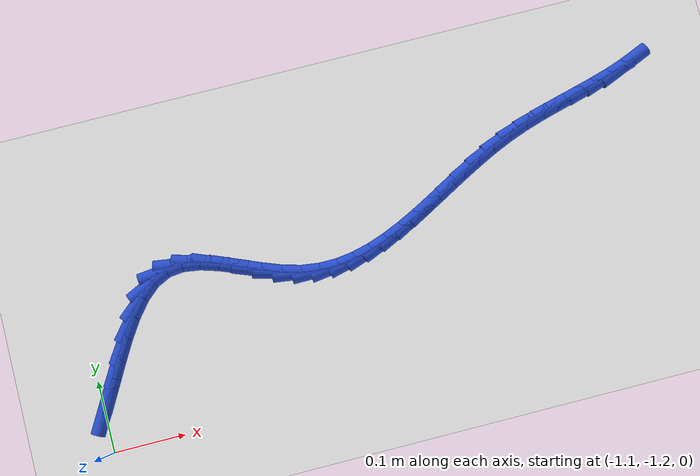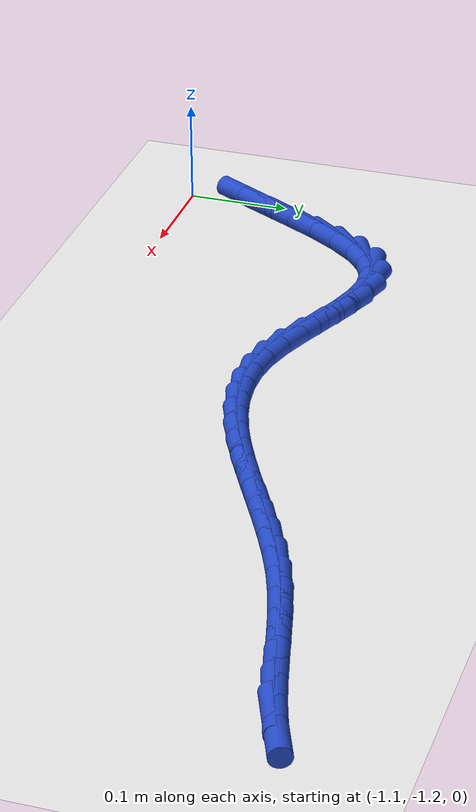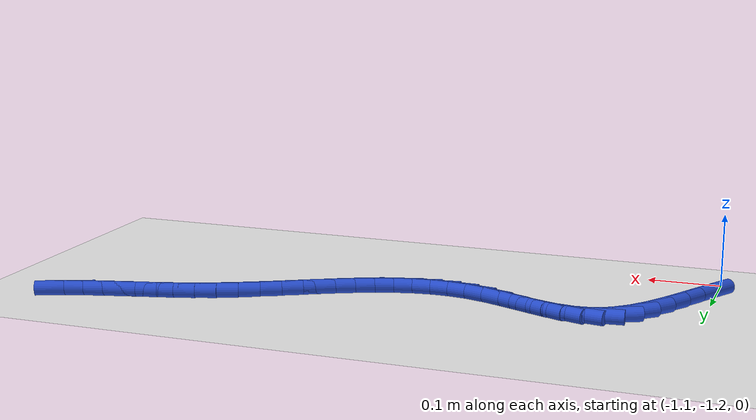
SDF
<sdf version="1.6">
 <world name="default">
  <model name="ground_plane">
   <static>1</static>
   <link name="link">
    <collision name="collision">
     <geometry><plane><normal>0 0 1</normal><size>100 100</size></plane></geometry>
     <surface><friction><ode><mu>100</mu><mu2>50</mu2></ode></friction></surface>
    </collision>
    <visual name="visual">
     <cast_shadows>0</cast_shadows>
     <geometry><plane><normal>0 0 1</normal><size>100 100</size></plane></geometry>
     <material>
      <script><uri>file://media/materials/scripts/gazebo.material</uri><name>Gazebo/WhiteGlow</name></script>
     </material>
    </visual>
   </link>
  </model>
  <model name="line">
   <link name="link_211">
    <pose>-1.0942910765353975 -1.1356147380315111 0.01 0 1.57 1.0641593272589378</pose>
    <collision name="collision">
     <geometry><cylinder><radius>0.01</radius><length>0.08</length></cylinder></geometry>
    </collision>
    <visual name="visual">
     <material>
      <script><name>Gazebo/Blue</name><uri>file://media/materials/scripts/gazebo.material</uri></script>
     </material>
     <geometry><cylinder><radius>0.01</radius><length>0.08</length></cylinder></geometry>
    </visual>
   </link>
   <link name="link_212">
    <pose>-1.0790211817739714 -1.1080990227830474 0.01 0 1.57 1.0752649122389126</pose>
    <collision name="collision">
     <geometry><cylinder><radius>0.01</radius><length>0.08</length></cylinder></geometry>
    </collision>
    <visual name="visual">
     <material>
      <script><name>Gazebo/Blue</name><uri>file://media/materials/scripts/gazebo.material</uri></script>
     </material>
     <geometry><cylinder><radius>0.01</radius><length>0.08</length></cylinder></geometry>
    </visual>
   </link>
   <link name="link_213">
    <pose>-1.0635011787217925 -1.079385626567906 0.01 0 1.57 1.054061123412886</pose>
    <collision name="collision">
     <geometry><cylinder><radius>0.01</radius><length>0.08</length></cylinder></geometry>
    </collision>
    <visual name="visual">
     <material>
      <script><name>Gazebo/Blue</name><uri>file://media/materials/scripts/gazebo.material</uri></script>
     </material>
     <geometry><cylinder><radius>0.01</radius><length>0.08</length></cylinder></geometry>
    </visual>
   </link>
   <link name="link_214">
    <pose>-1.0474318591004173 -1.0511062619289704 0.01 0 1.57 0.9976731279379</pose>
    <collision name="collision">
     <geometry><cylinder><radius>0.01</radius><length>0.08</length></cylinder></geometry>
    </collision>
    <visual name="visual">
     <material>
      <script><name>Gazebo/Blue</name><uri>file://media/materials/scripts/gazebo.material</uri></script>
     </material>
     <geometry><cylinder><radius>0.01</radius><length>0.08</length></cylinder></geometry>
    </visual>
   </link>
   <link name="link_215">
    <pose>-1.0305140146314022 -1.0248926414091233 0.01 0 1.57 0.8946312993672165</pose>
    <collision name="collision">
     <geometry><cylinder><radius>0.01</radius><length>0.08</length></cylinder></geometry>
    </collision>
    <visual name="visual">
     <material>
      <script><name>Gazebo/Blue</name><uri>file://media/materials/scripts/gazebo.material</uri></script>
     </material>
     <geometry><cylinder><radius>0.01</radius><length>0.08</length></cylinder></geometry>
    </visual>
   </link>
   <link name="link_216">
    <pose>-1.0124484370363034 -1.0023764775512483 0.01 0 1.57 0.7221161465296195</pose>
    <collision name="collision">
     <geometry><cylinder><radius>0.01</radius><length>0.08</length></cylinder></geometry>
    </collision>
    <visual name="visual">
     <material>
      <script><name>Gazebo/Blue</name><uri>file://media/materials/scripts/gazebo.material</uri></script>
     </material>
     <geometry><cylinder><radius>0.01</radius><length>0.08</length></cylinder></geometry>
    </visual>
   </link>
   <link name="link_217">
    <pose>-0.9929359180366771 -0.9851894828982285 0.01 0 1.57 0.4485207914425072</pose>
    <collision name="collision">
     <geometry><cylinder><radius>0.01</radius><length>0.08</length></cylinder></geometry>
    </collision>
    <visual name="visual">
     <material>
      <script><name>Gazebo/Blue</name><uri>file://media/materials/scripts/gazebo.material</uri></script>
     </material>
     <geometry><cylinder><radius>0.01</radius><length>0.08</length></cylinder></geometry>
    </visual>
   </link>
   <link name="link_218">
    <pose>-0.9716780176119354 -0.9749595010330955 0.01 0 1.57 0.11161782767706621</pose>
    <collision name="collision">
     <geometry><cylinder><radius>0.01</radius><length>0.08</length></cylinder></geometry>
    </collision>
    <visual name="visual">
     <material>
      <script><name>Gazebo/Blue</name><uri>file://media/materials/scripts/gazebo.material</uri></script>
     </material>
     <geometry><cylinder><radius>0.01</radius><length>0.08</length></cylinder></geometry>
    </visual>
   </link>
   <link name="link_219">
    <pose>-0.9485640576502664 -0.972368803316734 0.01 0 1.57 -0.14327795573760146</pose>
    <collision name="collision">
     <geometry><cylinder><radius>0.01</radius><length>0.08</length></cylinder></geometry>
    </collision>
    <visual name="visual">
     <material>
      <script><name>Gazebo/Blue</name><uri>file://media/materials/scripts/gazebo.material</uri></script>
     </material>
     <geometry><cylinder><radius>0.01</radius><length>0.08</length></cylinder></geometry>
    </visual>
   </link>
   <link name="link_220">
    <pose>-0.9239152203905436 -0.9759248049098899 0.01 0 1.57 -0.29730832622681647</pose>
    <collision name="collision">
     <geometry><cylinder><radius>0.01</radius><length>0.08</length></cylinder></geometry>
    </collision>
    <visual name="visual">
     <material>
      <script><name>Gazebo/Blue</name><uri>file://media/materials/scripts/gazebo.material</uri></script>
     </material>
     <geometry><cylinder><radius>0.01</radius><length>0.08</length></cylinder></geometry>
    </visual>
   </link>
   <link name="link_221">
    <pose>-0.8981131809450493 -0.983830277815893 0.01 0 1.57 -0.37492356543836775</pose>
    <collision name="collision">
     <geometry><cylinder><radius>0.01</radius><length>0.08</length></cylinder></geometry>
    </collision>
    <visual name="visual">
     <material>
      <script><name>Gazebo/Blue</name><uri>file://media/materials/scripts/gazebo.material</uri></script>
     </material>
     <geometry><cylinder><radius>0.01</radius><length>0.08</length></cylinder></geometry>
    </visual>
   </link>
   <link name="link_222">
    <pose>-0.8715396144260655 -0.9942879940380733 0.01 0 1.57 -0.3940948692389621</pose>
    <collision name="collision">
     <geometry><cylinder><radius>0.01</radius><length>0.08</length></cylinder></geometry>
    </collision>
    <visual name="visual">
     <material>
      <script><name>Gazebo/Blue</name><uri>file://media/materials/scripts/gazebo.material</uri></script>
     </material>
     <geometry><cylinder><radius>0.01</radius><length>0.08</length></cylinder></geometry>
    </visual>
   </link>
   <link name="link_223">
    <pose>-0.8445761959458739 -1.0055007255797597 0.01 0 1.57 -0.36059524615743016</pose>
    <collision name="collision">
     <geometry><cylinder><radius>0.01</radius><length>0.08</length></cylinder></geometry>
    </collision>
    <visual name="visual">
     <material>
      <script><name>Gazebo/Blue</name><uri>file://media/materials/scripts/gazebo.material</uri></script>
     </material>
     <geometry><cylinder><radius>0.01</radius><length>0.08</length></cylinder></geometry>
    </visual>
   </link>
   <link name="link_224">
    <pose>-0.8176046006167569 -1.0156712444442821 0.01 0 1.57 -0.26915476148347867</pose>
    <collision name="collision">
     <geometry><cylinder><radius>0.01</radius><length>0.08</length></cylinder></geometry>
    </collision>
    <visual name="visual">
     <material>
      <script><name>Gazebo/Blue</name><uri>file://media/materials/scripts/gazebo.material</uri></script>
     </material>
     <geometry><cylinder><radius>0.01</radius><length>0.08</length></cylinder></geometry>
    </visual>
   </link>
   <link name="link_225">
    <pose>-0.7910051343997562 -1.0230086638128104 0.01 0 1.57 -0.13105173998227246</pose>
    <collision name="collision">
     <geometry><cylinder><radius>0.01</radius><length>0.08</length></cylinder></geometry>
    </collision>
    <visual name="visual">
     <material>
      <script><name>Gazebo/Blue</name><uri>file://media/materials/scripts/gazebo.material</uri></script>
     </material>
     <geometry><cylinder><radius>0.01</radius><length>0.08</length></cylinder></geometry>
    </visual>
   </link>
   <link name="link_226">
    <pose>-0.7650040046304123 -1.0264357994588158 0.01 0 1.57 0.00793620378805641</pose>
    <collision name="collision">
     <geometry><cylinder><radius>0.01</radius><length>0.08</length></cylinder></geometry>
    </collision>
    <visual name="visual">
     <material>
      <script><name>Gazebo/Blue</name><uri>file://media/materials/scripts/gazebo.material</uri></script>
     </material>
     <geometry><cylinder><radius>0.01</radius><length>0.08</length></cylinder></geometry>
    </visual>
   </link>
   <link name="link_227">
    <pose>-0.7395341650327588 -1.0262336613775254 0.01 0 1.57 0.13489426089278808</pose>
    <collision name="collision">
     <geometry><cylinder><radius>0.01</radius><length>0.08</length></cylinder></geometry>
    </collision>
    <visual name="visual">
     <material>
      <script><name>Gazebo/Blue</name><uri>file://media/materials/scripts/gazebo.material</uri></script>
     </material>
     <geometry><cylinder><radius>0.01</radius><length>0.08</length></cylinder></geometry>
    </visual>
   </link>
   <link name="link_228">
    <pose>-0.7144957027890019 -1.022835479845328 0.01 0 1.57 0.24437842041667415</pose>
    <collision name="collision">
     <geometry><cylinder><radius>0.01</radius><length>0.08</length></cylinder></geometry>
    </collision>
    <visual name="visual">
     <material>
      <script><name>Gazebo/Blue</name><uri>file://media/materials/scripts/gazebo.material</uri></script>
     </material>
     <geometry><cylinder><radius>0.01</radius><length>0.08</length></cylinder></geometry>
    </visual>
   </link>
   <link name="link_229">
    <pose>-0.6897887050813485 -1.0166744851386116 0.01 0 1.57 0.333912117116734</pose>
    <collision name="collision">
     <geometry><cylinder><radius>0.01</radius><length>0.08</length></cylinder></geometry>
    </collision>
    <visual name="visual">
     <material>
      <script><name>Gazebo/Blue</name><uri>file://media/materials/scripts/gazebo.material</uri></script>
     </material>
     <geometry><cylinder><radius>0.01</radius><length>0.08</length></cylinder></geometry>
    </visual>
   </link>
   <link name="link_230">
    <pose>-0.6653132590920059 -1.0081839075337644 0.01 0 1.57 0.40328979439775614</pose>
    <collision name="collision">
     <geometry><cylinder><radius>0.01</radius><length>0.08</length></cylinder></geometry>
    </collision>
    <visual name="visual">
     <material>
      <script><name>Gazebo/Blue</name><uri>file://media/materials/scripts/gazebo.material</uri></script>
     </material>
     <geometry><cylinder><radius>0.01</radius><length>0.08</length></cylinder></geometry>
    </visual>
   </link>
   <link name="link_231">
    <pose>-0.6409694520031816 -0.9977969773071752 0.01 0 1.57 0.4535283378771728</pose>
    <collision name="collision">
     <geometry><cylinder><radius>0.01</radius><length>0.08</length></cylinder></geometry>
    </collision>
    <visual name="visual">
     <material>
      <script><name>Gazebo/Blue</name><uri>file://media/materials/scripts/gazebo.material</uri></script>
     </material>
     <geometry><cylinder><radius>0.01</radius><length>0.08</length></cylinder></geometry>
    </visual>
   </link>
   <link name="link_232">
    <pose>-0.6166573709970822 -0.9859469247352318 0.01 0 1.57 0.4860256183339517</pose>
    <collision name="collision">
     <geometry><cylinder><radius>0.01</radius><length>0.08</length></cylinder></geometry>
    </collision>
    <visual name="visual">
     <material>
      <script><name>Gazebo/Blue</name><uri>file://media/materials/scripts/gazebo.material</uri></script>
     </material>
     <geometry><cylinder><radius>0.01</radius><length>0.08</length></cylinder></geometry>
    </visual>
   </link>
   <link name="link_233">
    <pose>-0.5922771032559154 -0.9730669800943231 0.01 0 1.57 0.502061133911485</pose>
    <collision name="collision">
     <geometry><cylinder><radius>0.01</radius><length>0.08</length></cylinder></geometry>
    </collision>
    <visual name="visual">
     <material>
      <script><name>Gazebo/Blue</name><uri>file://media/materials/scripts/gazebo.material</uri></script>
     </material>
     <geometry><cylinder><radius>0.01</radius><length>0.08</length></cylinder></geometry>
    </visual>
   </link>
   <link name="link_234">
    <pose>-0.567728735961887 -0.9595903736608365 0.01 0 1.57 0.5025656332779836</pose>
    <collision name="collision">
     <geometry><cylinder><radius>0.01</radius><length>0.08</length></cylinder></geometry>
    </collision>
    <visual name="visual">
     <material>
      <script><name>Gazebo/Blue</name><uri>file://media/materials/scripts/gazebo.material</uri></script>
     </material>
     <geometry><cylinder><radius>0.01</radius><length>0.08</length></cylinder></geometry>
    </visual>
   </link>
   <link name="link_235">
    <pose>-0.5429123562972062 -0.9459503357111614 0.01 0 1.57 0.4880575953722744</pose>
    <collision name="collision">
     <geometry><cylinder><radius>0.01</radius><length>0.08</length></cylinder></geometry>
    </collision>
    <visual name="visual">
     <material>
      <script><name>Gazebo/Blue</name><uri>file://media/materials/scripts/gazebo.material</uri></script>
     </material>
     <geometry><cylinder><radius>0.01</radius><length>0.08</length></cylinder></geometry>
    </visual>
   </link>
   <link name="link_236">
    <pose>-0.5177280514440793 -0.9325800965216859 0.01 0 1.57 0.4586810229168363</pose>
    <collision name="collision">
     <geometry><cylinder><radius>0.01</radius><length>0.08</length></cylinder></geometry>
    </collision>
    <visual name="visual">
     <material>
      <script><name>Gazebo/Blue</name><uri>file://media/materials/scripts/gazebo.material</uri></script>
     </material>
     <geometry><cylinder><radius>0.01</radius><length>0.08</length></cylinder></geometry>
    </visual>
   </link>
   <link name="link_237">
    <pose>-0.4920759085847131 -0.9199128863687975 0.01 0 1.57 0.41432145657522756</pose>
    <collision name="collision">
     <geometry><cylinder><radius>0.01</radius><length>0.08</length></cylinder></geometry>
    </collision>
    <visual name="visual">
     <material>
      <script><name>Gazebo/Blue</name><uri>file://media/materials/scripts/gazebo.material</uri></script>
     </material>
     <geometry><cylinder><radius>0.01</radius><length>0.08</length></cylinder></geometry>
    </visual>
   </link>
   <link name="link_238">
    <pose>-0.46585601490131523 -0.9083819355288859 0.01 0 1.57 0.3567050628107164</pose>
    <collision name="collision">
     <geometry><cylinder><radius>0.01</radius><length>0.08</length></cylinder></geometry>
    </collision>
    <visual name="visual">
     <material>
      <script><name>Gazebo/Blue</name><uri>file://media/materials/scripts/gazebo.material</uri></script>
     </material>
     <geometry><cylinder><radius>0.01</radius><length>0.08</length></cylinder></geometry>
    </visual>
   </link>
   <link name="link_239">
    <pose>-0.4389927891417022 -0.8983714689739003 0.01 0 1.57 0.30568902148221677</pose>
    <collision name="collision">
     <geometry><cylinder><radius>0.01</radius><length>0.08</length></cylinder></geometry>
    </collision>
    <visual name="visual">
     <material>
      <script><name>Gazebo/Blue</name><uri>file://media/materials/scripts/gazebo.material</uri></script>
     </material>
     <geometry><cylinder><radius>0.01</radius><length>0.08</length></cylinder></geometry>
    </visual>
   </link>
   <link name="link_240">
    <pose>-0.41166761363374127 -0.8897481708536419 0.01 0 1.57 0.2727968115225747</pose>
    <collision name="collision">
     <geometry><cylinder><radius>0.01</radius><length>0.08</length></cylinder></geometry>
    </collision>
    <visual name="visual">
     <material>
      <script><name>Gazebo/Blue</name><uri>file://media/materials/scripts/gazebo.material</uri></script>
     </material>
     <geometry><cylinder><radius>0.01</radius><length>0.08</length></cylinder></geometry>
    </visual>
   </link>
   <link name="link_241">
    <pose>-0.3842161341659167 -0.8820680289997028 0.01 0 1.57 0.2579002777024294</pose>
    <collision name="collision">
     <geometry><cylinder><radius>0.01</radius><length>0.08</length></cylinder></geometry>
    </collision>
    <visual name="visual">
     <material>
      <script><name>Gazebo/Blue</name><uri>file://media/materials/scripts/gazebo.material</uri></script>
     </material>
     <geometry><cylinder><radius>0.01</radius><length>0.08</length></cylinder></geometry>
    </visual>
   </link>
   <link name="link_242">
    <pose>-0.35697609628745286 -0.8748828021933963 0.01 0 1.57 0.2613365469898021</pose>
    <collision name="collision">
     <geometry><cylinder><radius>0.01</radius><length>0.08</length></cylinder></geometry>
    </collision>
    <visual name="visual">
     <material>
      <script><name>Gazebo/Blue</name><uri>file://media/materials/scripts/gazebo.material</uri></script>
     </material>
     <geometry><cylinder><radius>0.01</radius><length>0.08</length></cylinder></geometry>
    </visual>
   </link>
   <link name="link_243">
    <pose>-0.3302852455475732 -0.8677442492160359 0.01 0 1.57 0.28429325361936486</pose>
    <collision name="collision">
     <geometry><cylinder><radius>0.01</radius><length>0.08</length></cylinder></geometry>
    </collision>
    <visual name="visual">
     <material>
      <script><name>Gazebo/Blue</name><uri>file://media/materials/scripts/gazebo.material</uri></script>
     </material>
     <geometry><cylinder><radius>0.01</radius><length>0.08</length></cylinder></geometry>
    </visual>
   </link>
   <link name="link_244">
    <pose>-0.3044813274955038 -0.8602041288489355 0.01 0 1.57 0.32894103099239336</pose>
    <collision name="collision">
     <geometry><cylinder><radius>0.01</radius><length>0.08</length></cylinder></geometry>
    </collision>
    <visual name="visual">
     <material>
      <script><name>Gazebo/Blue</name><uri>file://media/materials/scripts/gazebo.material</uri></script>
     </material>
     <geometry><cylinder><radius>0.01</radius><length>0.08</length></cylinder></geometry>
    </visual>
   </link>
   <link name="link_245">
    <pose>-0.27990208768046804 -0.8518141998734088 0.01 0 1.57 0.398400207656851</pose>
    <collision name="collision">
     <geometry><cylinder><radius>0.01</radius><length>0.08</length></cylinder></geometry>
    </collision>
    <visual name="visual">
     <material>
      <script><name>Gazebo/Blue</name><uri>file://media/materials/scripts/gazebo.material</uri></script>
     </material>
     <geometry><cylinder><radius>0.01</radius><length>0.08</length></cylinder></geometry>
    </visual>
   </link>
  </model>
 </world>
</sdf>
